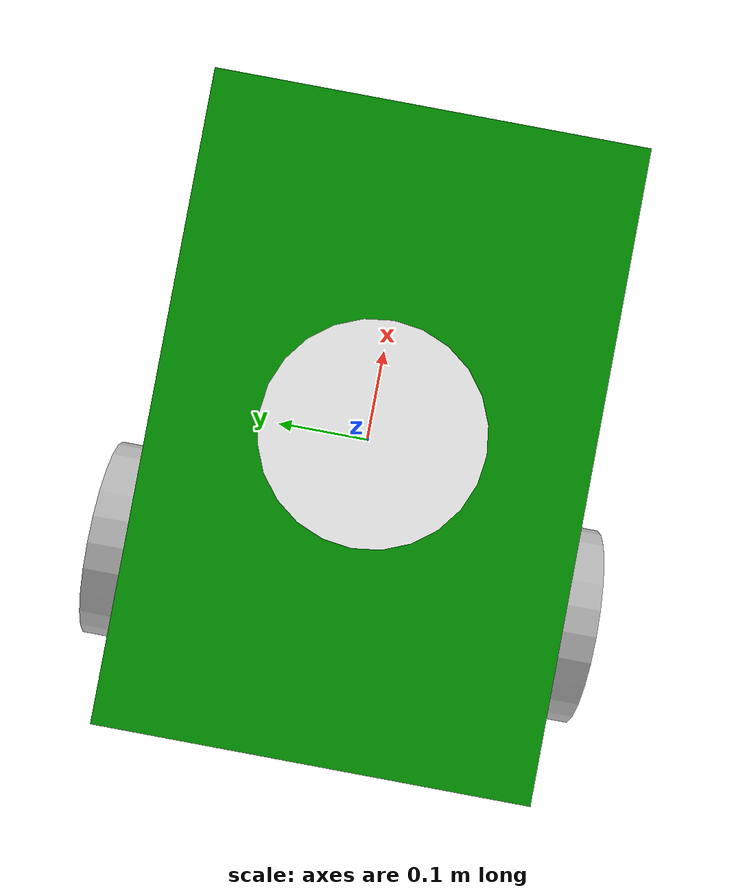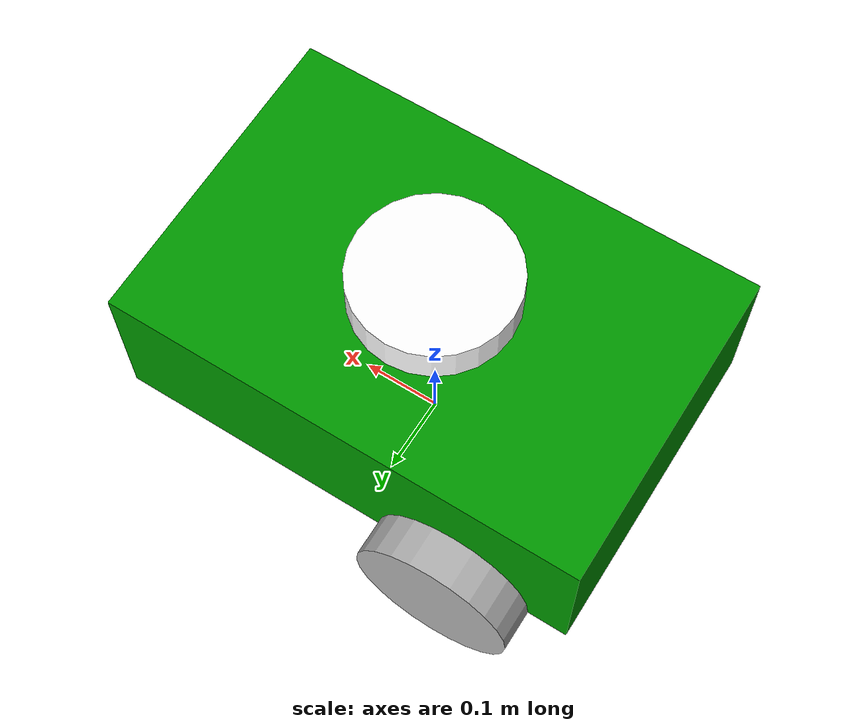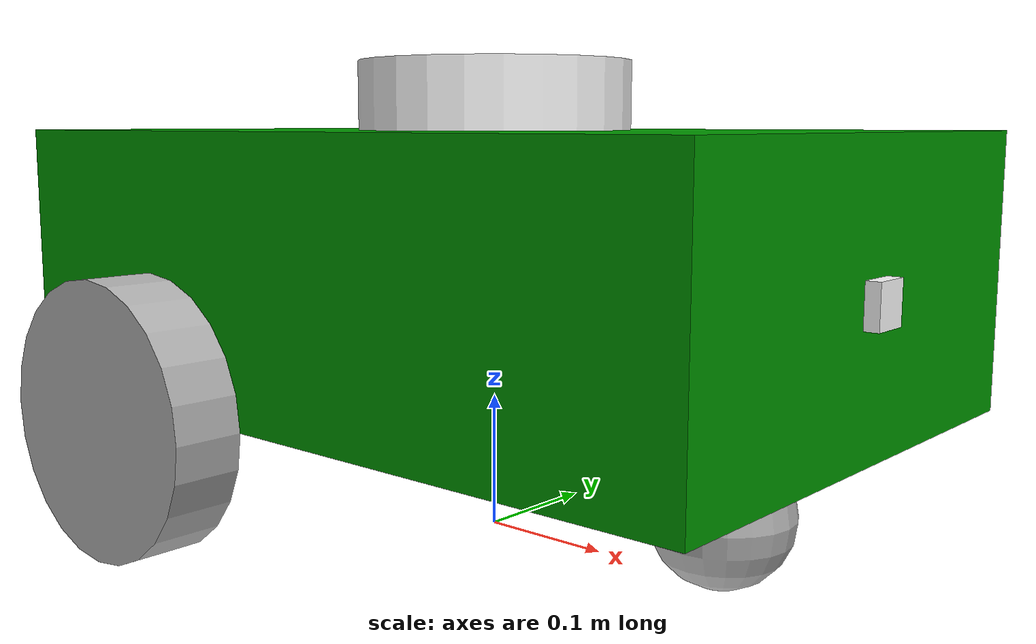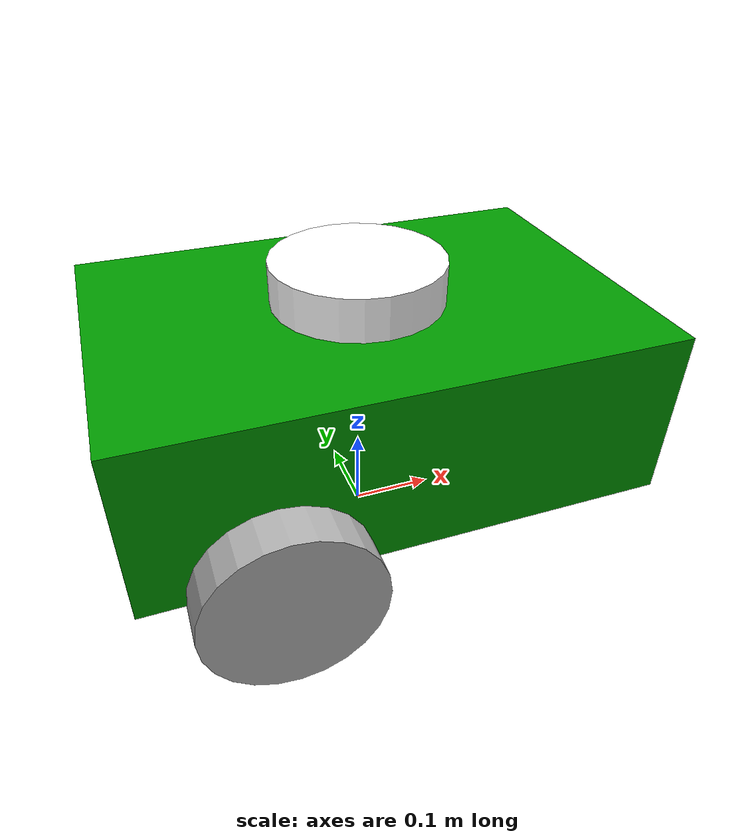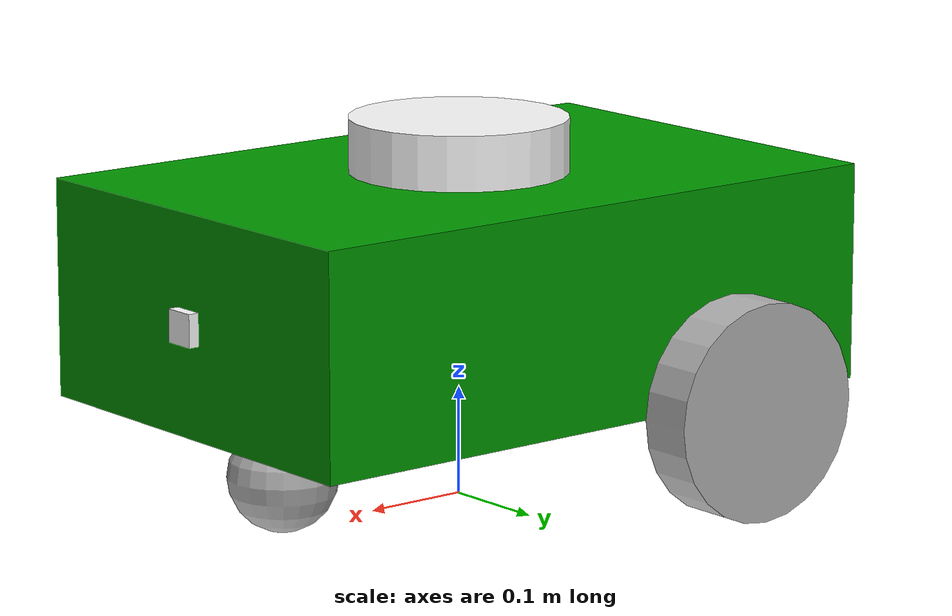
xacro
<?xml version="1.0"?>
<robot xmlns:xacro="http://www.ros.org/wiki/xacro"  name="robot">

    <xacro:include filename="robot_core.xacro"/>
    <!--xacro:include filename="gazebo_control.xacro">/-->
    <xacro:include filename="ros2_control.xacro"/>
    <xacro:include filename="lidar.xacro"/>
    <xacro:include filename="camera.xacro"/>

</robot>

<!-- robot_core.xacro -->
<robot xmlns:xacro="http://www.ros.org/wiki/xacro" >

    <xacro:include filename="inertial_macros.xacro"/>

    <material name="grey">
        <color rgba="0.7 0.7 0.7 1"/>
    </material>

    <material name="green">
        <color rgba="0 0.6 0 1"/>
    </material>

    <material name="white">
        <color rgba="1 1 1 1"/>
    </material>

    <link name="base_link" />

    <joint name="base_footprint_joint" type="fixed">
        <parent link="base_link"/>
        <child link="base_footprint"/>
        <origin xyz="0 0 0" rpy="0 0 0"/>
    </joint>

    <link name="base_footprint">
    </link>

    <link name="chassis">
        <visual>
            <geometry>
                <box size="0.6 0.4 0.2" />
            </geometry>
            <origin xyz="0 0 0.1" rpy="0 0 0" />
            <material name="green" />
        </visual>
        <collision>
            <geometry>
                <box size="0.6 0.4 0.2" />
            </geometry>
            <origin xyz="0 0 0.1" rpy="0 0 0" />

        </collision>
        <xacro:inertial_box mass="0.5" x="0.6" y="0.4" z="0.2">
            <origin xyz="0 0 0.1" rpy="0 0 0"/>
        </xacro:inertial_box>
    </link>
    <gazebo reference="chassis">
        <material>Gazebo/White</material>
    </gazebo>

    <link name="left_wheel">
        <visual>
            <geometry>
                <cylinder radius="0.1" length="0.05" />
            </geometry>
            <origin xyz="0 0 0" rpy="1.57 0 0"/>
            <material name="grey"/>
        </visual>
        <collision>
            <geometry>
                <cylinder radius="0.1" length="0.05" />
            </geometry>
            <origin xyz="0 0 0" rpy="1.57 0 0"/>

        </collision>
        <xacro:inertial_cylinder mass="0.1" length="0.05" radius="0.1">
                <origin xyz="0 0 0" rpy="1.57 0 0"/>
        </xacro:inertial_cylinder>
    </link>
    <gazebo reference="left_wheel">
        <material>Gazebo/Blue</material>
    </gazebo>

    <link name="right_wheel">
        <visual>
            <geometry>
                <cylinder radius="0.1" length="0.05" />
            </geometry>
            <origin xyz="0 0 0" rpy="1.57 0 0"/>
            <material name="grey"/>

        </visual>
        <collision>
            <geometry>
                <cylinder radius="0.1" length ="0.05" />
            </geometry>
            <origin xyz="0 0 0" rpy="1.57 0 0" />

        </collision>
        <xacro:inertial_cylinder mass="0.1" length="0.05" radius="0.1">
                <origin xyz="0 0 0" rpy="1.57 0 0"/>
        </xacro:inertial_cylinder>
    </link>
    <gazebo reference="right_wheel">
        <material>Gazebo/Blue</material>
    </gazebo>

    <link name="caster_wheel">
        <visual>
            <geometry>
                <sphere radius ="0.05" />
            </geometry>
            <origin xyz="0 0 0" rpy="0 0 0"/>
            <material name="grey"/>
        </visual>
        <collision>
            <geometry>
                <sphere radius ="0.05" />
            </geometry>
            <origin xyz="0 0 0" rpy="0 0 0"/>

        </collision>
        <xacro:inertial_sphere mass="0.1" radius="0.05">
            <origin xyz="0 0 0" rpy="0 0 0"/>
        </xacro:inertial_sphere>
    </link>
    <gazebo reference="caster_wheel">
        <material>Gazebo/Black</material>
        <mu1 value="0.001"/>
        <mu2 value="0.001"/>
    </gazebo>

    <joint name="base_joint" type="fixed">
        <parent link ="base_link" />
        <child link="chassis" />
        <origin xyz="0 0 0.1" rpy="0 0 0" />
    </joint>

    <joint name="base_left_wheel_joint" type="continuous">
        <parent link="chassis" />
        <child link="left_wheel" />
        <origin xyz="-0.15 0.225 0" rpy="0 0 0" />
        <axis xyz= "0 1 0" />

    </joint>

    <joint name="base_right_wheel_joint" type="continuous">
        <parent link="chassis" />
        <child link="right_wheel" />
        <origin xyz="-0.15 -0.225 0" rpy="0 0 0" />
        <axis xyz="0 1 0" />
    </joint>

    <joint name="base_caster_wheel_joint" type="fixed">
        <parent link ="chassis"/>
        <child link ="caster_wheel"/>
        <origin xyz="0.2 0 -0.05" rpy="0 0 0"/>
    </joint>

</robot>

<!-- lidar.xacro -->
<robot xmlns:xacro="http://www.ros.org/wiki/xacro" >
    <joint name="base_lidar_joint" type="fixed">
        <parent link="chassis" />
        <child link="lidar" />
        <origin xyz="0 0 0.225" rpy="0 0 0" />
    </joint>

    <link name="lidar">
        <visual>
            <geometry>
                <cylinder radius="0.1" length ="0.05" />
            </geometry>
            <origin xyz="0 0 0" rpy="0 0 0" />
            <material name="white" />
        </visual>
        <collision>
            <geometry>
                <cylinder radius="0.1" length ="0.05" />
            </geometry>
            <origin xyz="0 0 0" rpy="0 0 0" />
        </collision>
        <xacro:inertial_cylinder mass="0.1" length="0.05" radius="0.1">
            <origin xyz="0 0 0" rpy="0 0 0"/>
        </xacro:inertial_cylinder>

    </link>

    <gazebo reference="lidar">
        <material>Gazebo/Red</material>

        <sensor name="laser" type="ray">
            <pose> 0 0 0 0 0 0 </pose>
            <visualize>true</visualize>
            <update_rate>10</update_rate>
            <ray>
                <scan>
                    <horizontal>
                        <samples>360</samples>
                        <min_angle>-3.14</min_angle>
                        <max_angle>3.14</max_angle>
                    </horizontal>
                </scan>
                <range>
                    <min>0.3</min>
                    <max>12</max>
                </range>
            </ray>
            <plugin name="laser_controller" filename="libgazebo_ros_ray_sensor.so">
                <ros>
                    <argument>~/out:=scan</argument>
                </ros>
                <output_type>sensor_msgs/LaserScan</output_type>
                <frame_name>lidar</frame_name>
            </plugin>
        </sensor>
    </gazebo>

</robot>

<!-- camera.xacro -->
<robot xmlns:xacro="http://www.ros.org/wiki/xacro" >

    <joint name="camera_joint" type="fixed">
        <parent link="chassis" />
        <child link="camera_link" />
        <origin xyz="0.305 0 0.1" rpy="0 0 0" />
    </joint>

    <link name="camera_link">
        <visual>
            <geometry>
                <box size="0.010 0.03 0.03"/>
            </geometry>
            <origin xyz="0 0 0" rpy="0 0 0" />
            <material name="white" />
        </visual>
    </link>

    <joint name="camera_optical_joint" type="fixed">
        <parent link="camera_link" />
        <child link="camera_link_optical" />
        <origin xyz="0 0 0" rpy="-1.5708 0 -1.5708" />
    </joint>

    <link name="camera_link_optical"></link>

    <gazebo reference="camera_link">
        <material>Gazebo/Red</material>

        <sensor name="camera" type="camera">
            <pose> 0 0 0 0 0 0 </pose>
            <visualize>true</visualize>
            <update_rate>10</update_rate>
            <camera>
                <horizontal_fov>1.089</horizontal_fov>
                <image>
                    <format>R8G8B8</format>
                    <width>640</width>
                    <height>480</height>
                </image>
                <clip>
                    <near>0.05</near>
                    <far>8.0</far>
                </clip>
            </camera>
            <plugin name="camera_controller" filename="libgazebo_ros_camera.so">

                <frame_name>camera_link_optical</frame_name>
            </plugin>
        </sensor>
    </gazebo>

</robot>
